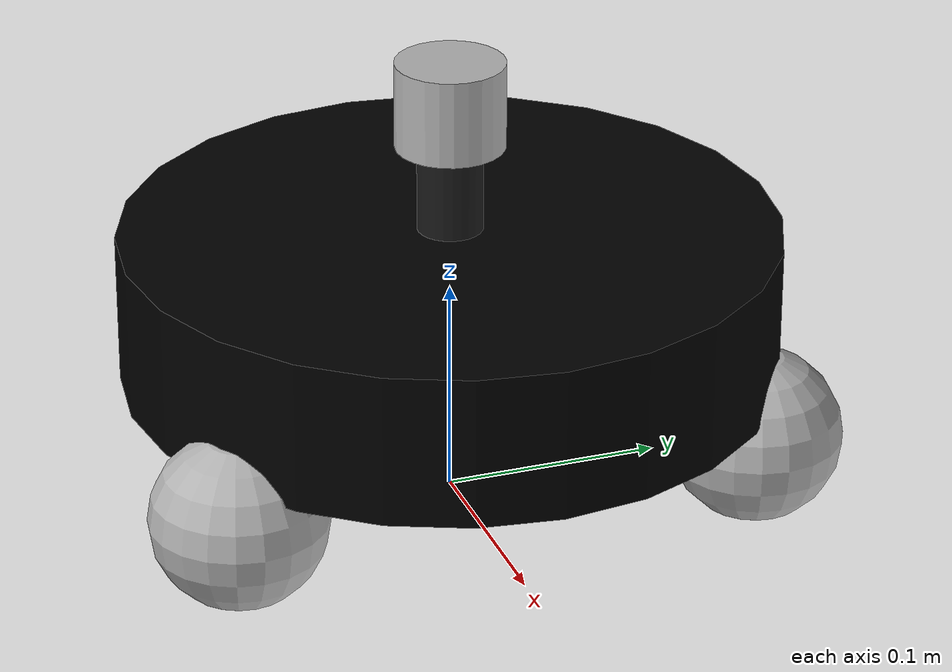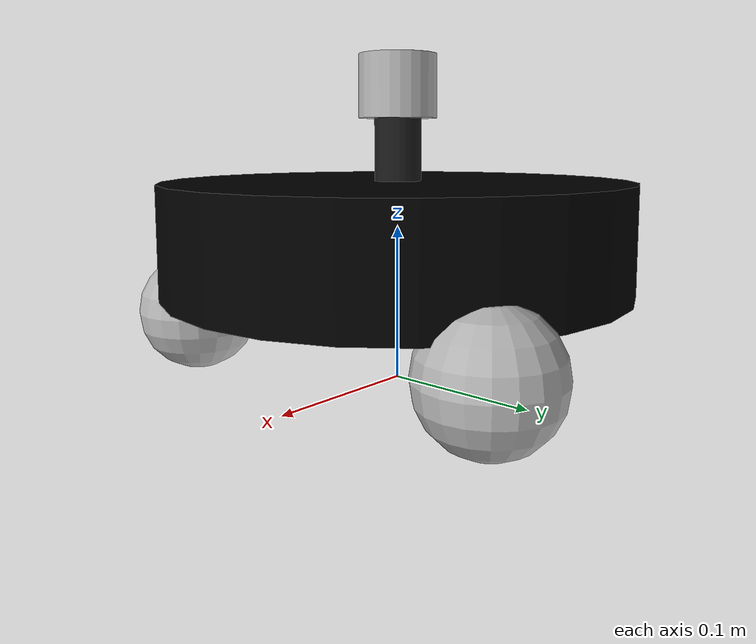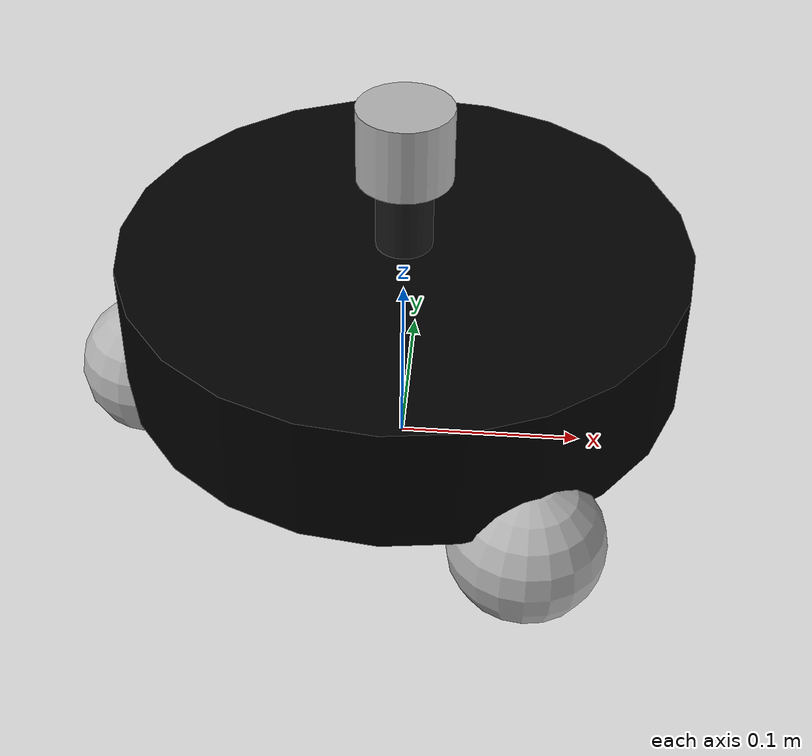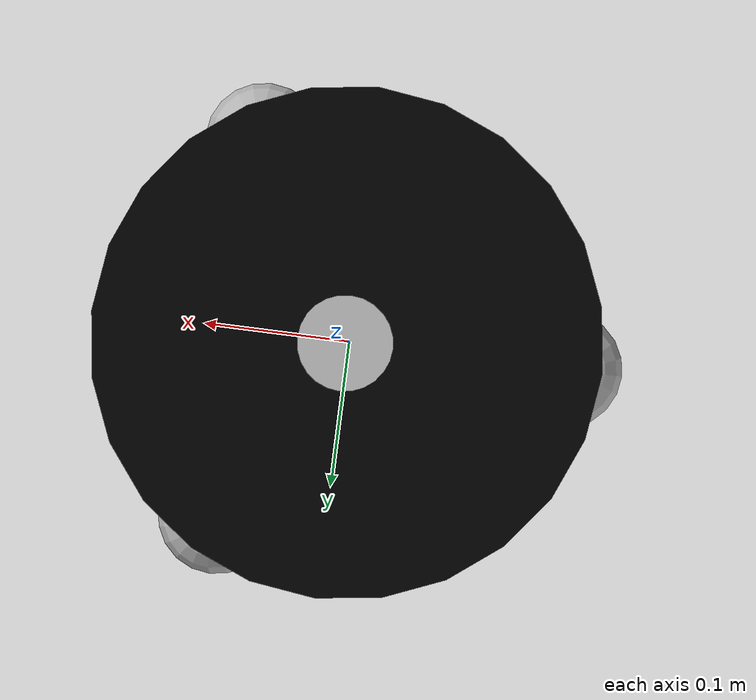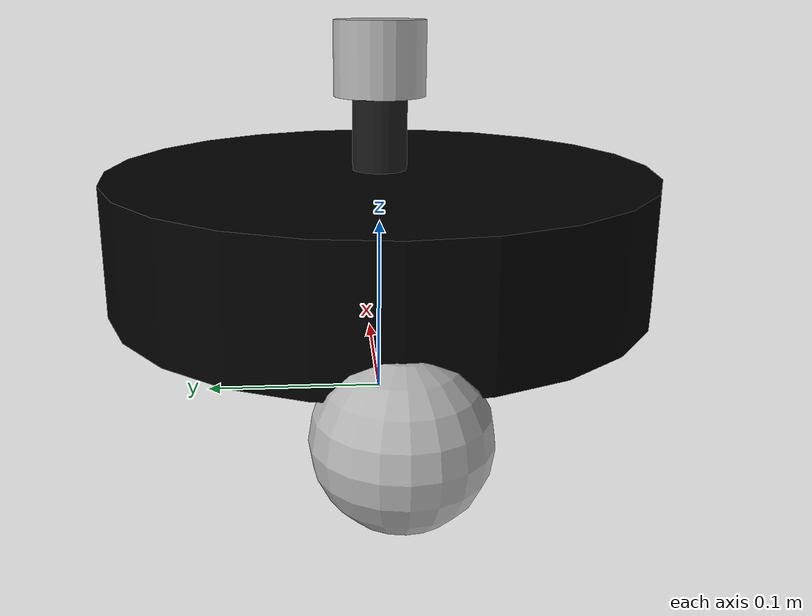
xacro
<!--
    实现思路:
    1.将一些常量、变量封装为 xacro:property
      比如:PI 值、小车底盘半径、离地间距、车轮半径、宽度 ....
    2.使用 宏 封装驱动轮以及支撑轮实现，调用相关宏生成驱动轮与支撑轮
-->
<!-- 根标签，必须声明 xmlns:xacro -->
<robot name="my_car" xmlns:xacro="http://www.ros.org/wiki/xacro">
    <!-- 封装变量、常量 -->
    <xacro:property name="PI" value="3.141"/>
    <!-- 宏:黑色设置 -->
    <material name="black">
        <color rgba="0.0 0.0 0.0 1" />
    </material>
    <!-- 底盘属性 -->
    <xacro:property name="base_footprint_radius" value="0.001" /> <!-- base_footprint 半径  -->
    <xacro:property name="base_link_radius" value="0.15" /> <!-- base_link 半径 -->
    <xacro:property name="base_link_length" value="0.07" /> <!-- base_link 长 -->
    <xacro:property name="earth_space" value="0.06" /> <!-- 离地间距 -->
    <!-- 底盘 -->
    <link name="base_footprint">
      <visual>
        <geometry>
          <sphere radius="${base_footprint_radius}" />
        </geometry>
      </visual>
    </link>

    <link name="base_link">
      <visual>
        <geometry>
          <cylinder radius="${base_link_radius}" length="${base_link_length}" />
        </geometry>
        <origin xyz="0 0 0" rpy="0 0 0" />
        <material name="black"/>

      </visual>
    </link>

    <joint name="base_link2base_footprint" type="fixed">
      <parent link="base_footprint" />
      <child link="base_link" />
      <origin xyz="0 0 ${earth_space + base_link_length / 2 }" />
    </joint>
    <!-- support_laser -->
    <xacro:property name="support_laser_radar_length" value="0.04" />
    <link name="support_laser_radar">
        <visual>
            <origin xyz="0.0 0.0 0.0" rpy="0.0 0.0 0.0"/>
            <geometry>
                <cylinder radius="0.015" length="${support_laser_radar_length }"/>
            </geometry>
            <material name="support_laser_radar_color">
                <color rgba="0.1 0.1 0.1 1"/>
            </material>
        </visual>
    </link>
    <!-- support2base_link  -->
    <joint name="support_laser_radar2base_link" type="fixed">
        <origin xyz="0.0 0.0 ${base_link_length / 2+support_laser_radar_length / 2}" rpy="0.0 0.0 0.0"/>
        <parent link="base_link"/>
        <child link="support_laser_radar"/>
        <axis xyz="0.0 0.0 0.0"/>
    </joint>
   <!-- Laser Radar link -->
   <xacro:property name="laser_radar_length" value="0.04" />
    <link name="laser_radar">
        <visual>
            <origin xyz="0.0 0.0 0.0" rpy="0.0 0.0 0.0"/>
            <geometry>
                <cylinder radius="0.025" length="${laser_radar_length}"/>
            </geometry>
            <material name="laser_radar_color">
                <color rgba="0.7 0.7 0.7 1"/>
            </material>
        </visual>
    </link>
    <!-- laser_radar2support_laser_radar -->
    <joint name="laser_radar2support_laser_radar" type="continuous">
        <origin xyz="0.0 0.0 ${laser_radar_length / 2+support_laser_radar_length / 2}" rpy="0.0 0.0 0.0"/>
        <parent link="support_laser_radar"/>
        <child link="laser_radar"/>
        <axis xyz="0.0 0.0 1"/>
    </joint>
    <!--wheel link -->
     <xacro:property name="wheel_radius" value="0.04" /> <!-- 支撑轮半径 -->

    <!-- wheel宏 -->
    <xacro:macro name="add_wheel" params="name flag1 flag2" >
      <link name="${name}_wheel">
        <visual>
            <geometry>
                <sphere radius="${wheel_radius}" />
            </geometry>
            <origin xyz="0 0 0" rpy="0 0 0" />
            <material name="wheel_color">
                <color rgba="0.7 0.7 0.7 1.0"/>
            </material>
        </visual>
      </link>

      <joint name="base_${name}_wheel_joint" type="continuous">
          <parent link="base_link" />
          <child link="${name}_wheel" />
          <origin xyz="${flag1} ${flag2} ${-(base_link_length / 2 + earth_space / 2)+0.01}" />
          <axis xyz="1 1 0" />
      </joint>
    </xacro:macro>
    <xacro:add_wheel name="l" flag1="-0.14" flag2="0"/>
    <xacro:add_wheel name="r" flag1="0.07" flag2="0.121244"/>
    <xacro:add_wheel name="b" flag1="0.07" flag2="-0.121244"/>

</robot>
